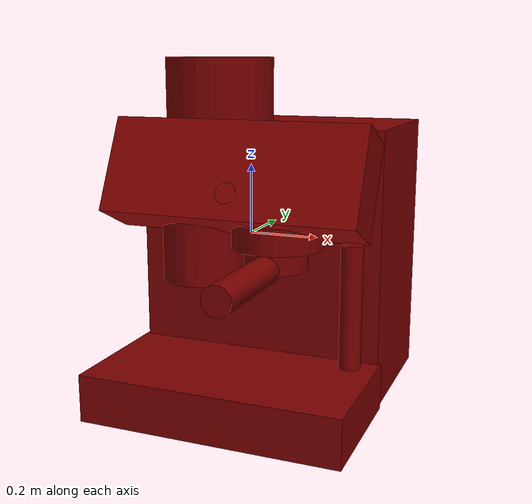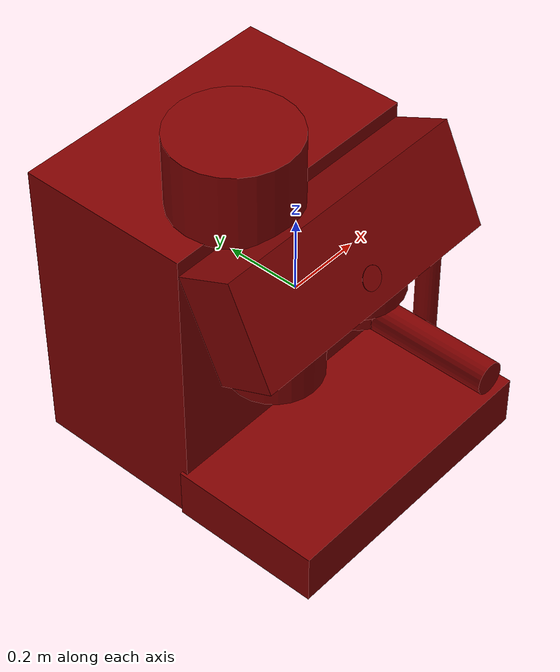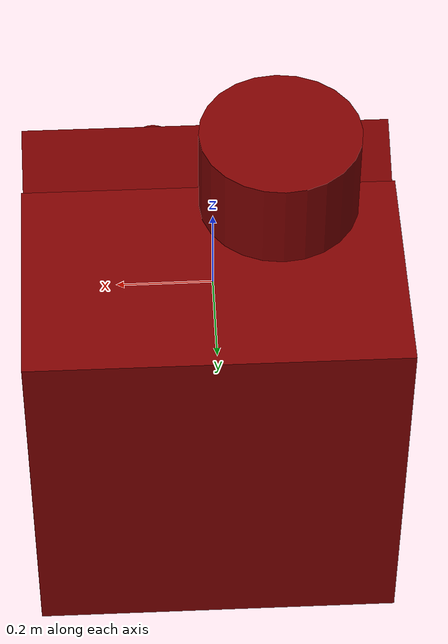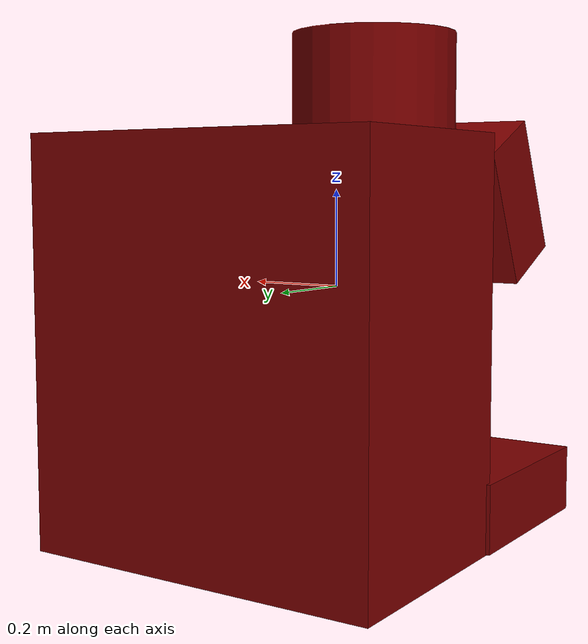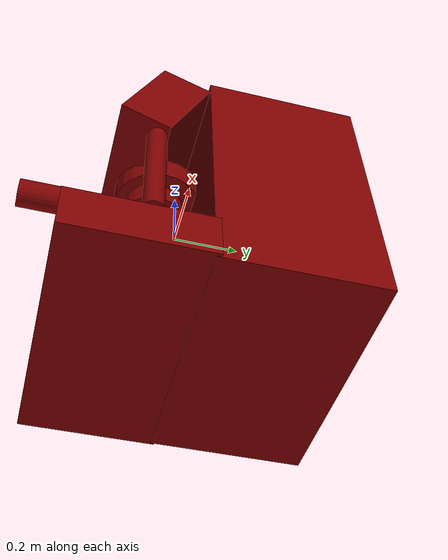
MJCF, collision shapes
<mujoco model="model">
  <compiler angle="radian"/>
  <asset>
    <texture file="visuals/material_0.png" name="tex-model" type="2d"/>
    <texture type="2d" name="image3" file="visuals/image3.png"/>
    <texture type="2d" name="image4" file="visuals/image4.png"/>
    <texture type="2d" name="image12" file="visuals/image12.png"/>
    <texture type="2d" name="image11" file="visuals/image11.png"/>
    <texture type="2d" name="image1" file="visuals/image1.png"/>
    <texture type="2d" name="image8" file="visuals/image8.png"/>
    <texture type="2d" name="image10" file="visuals/image10.png"/>
    <texture type="2d" name="image9" file="visuals/image9.png"/>
    <material name="model" reflectance="0.5" texrepeat="1 1" texture="tex-model" texuniform="false"/>
    <material name="Material_53" texture="image3" specular="0.5" shininess="0.122500017"/>
    <material name="back" specular="0.5" shininess="0.122500017" rgba="0.000000 0.000000 0.000000 1.0"/>
    <material name="body" specular="0.5" shininess="1.0" rgba="1.000000 1.000000 1.000000 1.0"/>
    <material name="body_side" texture="image4" specular="0.5" shininess="0.25"/>
    <material name="chrome" specular="0.5" shininess="0.639999995" rgba="1.000000 1.000000 1.000000 1.0"/>
    <material name="glass" texture="image12" specular="0.5" shininess="0.25"/>
    <material name="handle" texture="image11" specular="0.5" shininess="0.122500017"/>
    <material name="material" texture="image1" specular="0.5" shininess="0.25"/>
    <material name="material_2" texture="image8" specular="0.5" shininess="1.0"/>
    <material name="material_5" specular="0.5" shininess="1.0" rgba="1.000000 1.000000 1.000000 1.0"/>
    <material name="panel" texture="image10" specular="0.5" shininess="0.5625"/>
    <material name="steel" specular="0.5" shininess="1.0" rgba="1.000000 1.000000 1.000000 1.0"/>
    <material name="text" texture="image9" specular="0.5" shininess="1.0"/>
    <material name="under" specular="0.5" shininess="0.0" rgba="0.000000 0.000000 0.000000 1.0"/>
    <mesh file="visuals/model_0.obj" name="model_0_vis" scale="1 1 1"/>
    <mesh file="visuals/model_1.obj" name="model_1_vis" scale="1 1 1"/>
    <mesh file="visuals/model_2.obj" name="model_2_vis" scale="1 1 1"/>
    <mesh file="visuals/model_3.obj" name="model_3_vis" scale="1 1 1"/>
    <mesh file="visuals/model_4.obj" name="model_4_vis" scale="1 1 1"/>
    <mesh file="visuals/model_5.obj" name="model_5_vis" scale="1 1 1"/>
    <mesh file="visuals/model_6.obj" name="model_6_vis" scale="1 1 1"/>
    <mesh file="visuals/model_7.obj" name="model_7_vis" scale="1 1 1"/>
    <mesh file="visuals/model_8.obj" name="model_8_vis" scale="1 1 1"/>
    <mesh file="visuals/model_9.obj" name="model_9_vis" scale="1 1 1"/>
    <mesh file="visuals/model_10.obj" name="model_10_vis" scale="1 1 1"/>
    <mesh file="visuals/model_11.obj" name="model_11_vis" scale="1 1 1"/>
    <mesh file="visuals/model_12.obj" name="model_12_vis" scale="1 1 1"/>
    <mesh file="visuals/model_13.obj" name="model_13_vis" scale="1 1 1"/>
  </asset>
  <default>
    <default class="visual">
      <geom conaffinity="0" contype="0" group="1" type="mesh"/>
    </default>
    <default class="collision">
      <geom group="0" rgba="0.5 0 0 0.5"/>
    </default>
    <default class="region">
      <geom group="1" conaffinity="0" contype="0" rgba="0 1 0 0"/>
    </default>
  </default>
  <worldbody>
    <body>
      <!-- exterior bounding box points -->
      <body name="object">
        <geom solimp="0.998 0.998 0.001" solref="0.001 1" density="100" friction="0.95 0.3 0.1" type="mesh" mesh="model_0_vis" material="body_side" class="visual"/>
        <geom solimp="0.998 0.998 0.001" solref="0.001 1" density="100" friction="0.95 0.3 0.1" type="mesh" mesh="model_1_vis" material="chrome" class="visual"/>
        <geom solimp="0.998 0.998 0.001" solref="0.001 1" density="100" friction="0.95 0.3 0.1" type="mesh" mesh="model_2_vis" material="steel" class="visual"/>
        <geom solimp="0.998 0.998 0.001" solref="0.001 1" density="100" friction="0.95 0.3 0.1" type="mesh" mesh="model_3_vis" material="Material_53" class="visual"/>
        <geom solimp="0.998 0.998 0.001" solref="0.001 1" density="100" friction="0.95 0.3 0.1" type="mesh" mesh="model_4_vis" material="back" class="visual"/>
        <geom solimp="0.998 0.998 0.001" solref="0.001 1" density="100" friction="0.95 0.3 0.1" type="mesh" mesh="model_5_vis" material="under" class="visual"/>
        <geom solimp="0.998 0.998 0.001" solref="0.001 1" density="100" friction="0.95 0.3 0.1" type="mesh" mesh="model_6_vis" material="glass" class="visual"/>
        <geom solimp="0.998 0.998 0.001" solref="0.001 1" density="100" friction="0.95 0.3 0.1" type="mesh" mesh="model_7_vis" material="handle" class="visual"/>
        <geom solimp="0.998 0.998 0.001" solref="0.001 1" density="100" friction="0.95 0.3 0.1" type="mesh" mesh="model_8_vis" material="material_5" class="visual"/>
        <geom solimp="0.998 0.998 0.001" solref="0.001 1" density="100" friction="0.95 0.3 0.1" type="mesh" mesh="model_9_vis" material="panel" class="visual"/>
        <geom solimp="0.998 0.998 0.001" solref="0.001 1" density="100" friction="0.95 0.3 0.1" type="mesh" mesh="model_10_vis" material="text" class="visual"/>
        <geom solimp="0.998 0.998 0.001" solref="0.001 1" density="100" friction="0.95 0.3 0.1" type="mesh" mesh="model_11_vis" material="material_2" class="visual"/>
        <geom solimp="0.998 0.998 0.001" solref="0.001 1" density="100" friction="0.95 0.3 0.1" type="mesh" mesh="model_12_vis" material="material" class="visual"/>
        <geom solimp="0.998 0.998 0.001" solref="0.001 1" density="100" friction="0.95 0.3 0.1" type="mesh" mesh="model_13_vis" material="body" class="visual"/>
        <geom class="collision" type="box" pos="0.01 0.25 -0.098" size="0.372 0.23 0.405"/>
        <geom class="collision" type="box" pos="0.01 -0.165 -0.432" size="0.38 0.20 0.069"/>
        <geom class="collision" type="cylinder" pos="-0.127 0.0675 0.402" size="0.159 0.099"/>
        <geom class="collision" type="box" pos="0.01 -0.112 0.175" size="0.37 0.08 0.14" axisangle="1 0 0 -0.44"/>
        <geom class="collision" type="cylinder" pos="0.0128 -0.2125 0.1485" size="0.03 0.002 0" axisangle="1 0 0 1.13" name="start_button"/>
        <site rgba="0 0 0 0" size="0.01" pos="0.13 -0.13 -0.36" name="receptacle_place_site"/>
        <site rgba="0.8 0.5 0.25 0" size="0.006 0.13" pos="0.065 -0.095 -0.24" type="cylinder" name="coffee_liquid_left"/>
        <site rgba="0.8 0.5 0.25 0" size="0.006 0.13" pos="0.16 -0.095 -0.24" type="cylinder" name="coffee_liquid_right"/>
        <!-- Tamping output -->
        <geom class="collision" type="cylinder" pos="-0.129 -0.05 -0.035" size="0.12 0.099"/>
        <!-- Coffee Output -->
        <geom class="collision" type="cylinder" pos="0.112 -0.08 0.022" size="0.13 0.037"/>
        <geom class="collision" type="cylinder" pos="0.112 -0.093 -0.045" size="0.09 0.03"/>
        <!-- Handle -->
        <geom class="collision" type="cylinder" pos="0.111 -0.315 -0.062" size="0.041 0.17" axisangle="1 0 0 1.57"/>
        <geom class="collision" type="cylinder" pos="0.34 -0.13 -0.15" size="0.03 0.17" axisangle="1 0 0 0"/>
        <geom class="region" name="reg_main" type="box" pos="0.0 0.0 0.0" size="0.41590313846589455 0.4833089269755879 0.5"/>
      </body>
    </body>
  </worldbody>
</mujoco>
